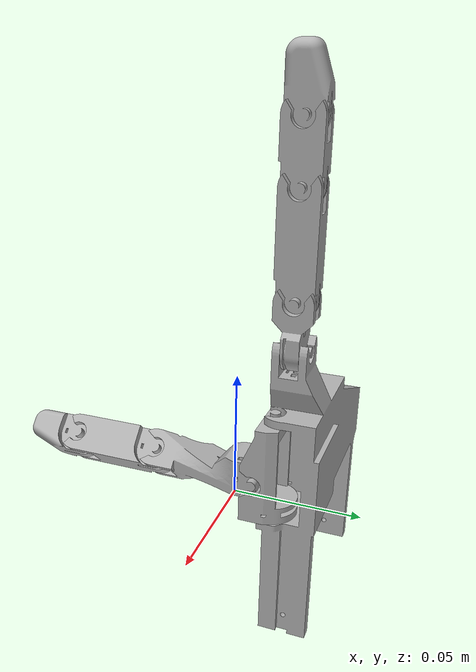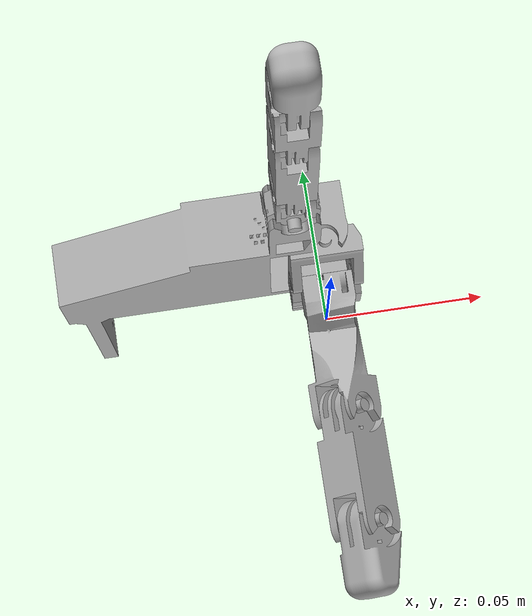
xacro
<?xml version="1.0" ?>
<robot name="Hand" xmlns:xacro="http://www.ros.org/wiki/xacro">

<xacro:include filename="$(find Hand_description)/urdf/materials.xacro" />
<xacro:include filename="$(find Hand_description)/urdf/Hand.trans" />
<xacro:include filename="$(find Hand_description)/urdf/Hand.gazebo" />
<link name="base_link">
  <inertial>
    <origin xyz="-0.03777068462234341 0.02327196685078711 0.006594720592782829" rpy="0 0 0"/>
    <mass value="0.5460361346454996"/>
    <inertia ixx="0.000295" iyy="0.000629" izz="0.000375" ixy="-1.3e-05" iyz="-2e-06" ixz="-4.9e-05"/>
  </inertial>
  <visual>
    <origin xyz="0 0 0" rpy="0 0 0"/>
    <geometry>
      <mesh filename="package://Hand_description/meshes/base_link.stl" scale="0.001 0.001 0.001"/>
    </geometry>
    <material name="silver"/>
  </visual>
  <collision>
    <origin xyz="0 0 0" rpy="0 0 0"/>
    <geometry>
      <mesh filename="package://Hand_description/meshes/base_link.stl" scale="0.001 0.001 0.001"/>
    </geometry>
  </collision>
</link>

<link name="Indexfix_1">
  <inertial>
    <origin xyz="2.2304717936030838e-05 0.006517871144740152 0.006450604350141623" rpy="0 0 0"/>
    <mass value="0.01603110386594604"/>
    <inertia ixx="1e-06" iyy="1e-06" izz="0.0" ixy="0.0" iyz="-0.0" ixz="-0.0"/>
  </inertial>
  <visual>
    <origin xyz="0.008531 -0.012523 -0.059976" rpy="0 0 0"/>
    <geometry>
      <mesh filename="package://Hand_description/meshes/Indexfix_1.stl" scale="0.001 0.001 0.001"/>
    </geometry>
    <material name="silver"/>
  </visual>
  <collision>
    <origin xyz="0.008531 -0.012523 -0.059976" rpy="0 0 0"/>
    <geometry>
      <mesh filename="package://Hand_description/meshes/Indexfix_1.stl" scale="0.001 0.001 0.001"/>
    </geometry>
  </collision>
</link>

<link name="Indexend_1">
  <inertial>
    <origin xyz="0.005500094052565433 0.00011252611470038282 0.01872282860307055" rpy="0 0 0"/>
    <mass value="0.041407323431063965"/>
    <inertia ixx="6e-06" iyy="6e-06" izz="1e-06" ixy="0.0" iyz="0.0" ixz="-0.0"/>
  </inertial>
  <visual>
    <origin xyz="0.014031 -0.019023 -0.078976" rpy="0 0 0"/>
    <geometry>
      <mesh filename="package://Hand_description/meshes/Indexend_1.stl" scale="0.001 0.001 0.001"/>
    </geometry>
    <material name="silver"/>
  </visual>
  <collision>
    <origin xyz="0.014031 -0.019023 -0.078976" rpy="0 0 0"/>
    <geometry>
      <mesh filename="package://Hand_description/meshes/Indexend_1.stl" scale="0.001 0.001 0.001"/>
    </geometry>
  </collision>
</link>

<link name="Indexmiddle_1">
  <inertial>
    <origin xyz="0.00551302966278297 0.00024944179119607 0.009722196457126825" rpy="0 0 0"/>
    <mass value="0.02101649364830199"/>
    <inertia ixx="2e-06" iyy="1e-06" izz="1e-06" ixy="0.0" iyz="0.0" ixz="-0.0"/>
  </inertial>
  <visual>
    <origin xyz="0.014031 -0.019023 -0.118976" rpy="0 0 0"/>
    <geometry>
      <mesh filename="package://Hand_description/meshes/Indexmiddle_1.stl" scale="0.001 0.001 0.001"/>
    </geometry>
    <material name="silver"/>
  </visual>
  <collision>
    <origin xyz="0.014031 -0.019023 -0.118976" rpy="0 0 0"/>
    <geometry>
      <mesh filename="package://Hand_description/meshes/Indexmiddle_1.stl" scale="0.001 0.001 0.001"/>
    </geometry>
  </collision>
</link>

<link name="Indextip_1">
  <inertial>
    <origin xyz="0.005493257746451662 -0.0002846037536686323 0.009522164207143607" rpy="0 0 0"/>
    <mass value="0.022704811734369713"/>
    <inertia ixx="2e-06" iyy="1e-06" izz="0.0" ixy="0.0" iyz="0.0" ixz="0.0"/>
  </inertial>
  <visual>
    <origin xyz="0.014031 -0.019023 -0.141976" rpy="0 0 0"/>
    <geometry>
      <mesh filename="package://Hand_description/meshes/Indextip_1.stl" scale="0.001 0.001 0.001"/>
    </geometry>
    <material name="silver"/>
  </visual>
  <collision>
    <origin xyz="0.014031 -0.019023 -0.141976" rpy="0 0 0"/>
    <geometry>
      <mesh filename="package://Hand_description/meshes/Indextip_1.stl" scale="0.001 0.001 0.001"/>
    </geometry>
  </collision>
</link>

<link name="Thumbroll_1">
  <inertial>
    <origin xyz="9.186167287673669e-05 -0.0013490725238598789 -0.02712996583655558" rpy="0 0 0"/>
    <mass value="0.03694987232707526"/>
    <inertia ixx="8e-06" iyy="9e-06" izz="3e-06" ixy="0.0" iyz="-0.0" ixz="0.0"/>
  </inertial>
  <visual>
    <origin xyz="-0.001 -0.015524 -0.038476" rpy="0 0 0"/>
    <geometry>
      <mesh filename="package://Hand_description/meshes/Thumbroll_1.stl" scale="0.001 0.001 0.001"/>
    </geometry>
    <material name="silver"/>
  </visual>
  <collision>
    <origin xyz="-0.001 -0.015524 -0.038476" rpy="0 0 0"/>
    <geometry>
      <mesh filename="package://Hand_description/meshes/Thumbroll_1.stl" scale="0.001 0.001 0.001"/>
    </geometry>
  </collision>
</link>

<link name="Thumbend_1">
  <inertial>
    <origin xyz="0.011004986490972316 -0.01762966389249578 -0.0006197567673547743" rpy="0 0 0"/>
    <mass value="0.05264211961831972"/>
    <inertia ixx="8e-06" iyy="2e-06" izz="9e-06" ixy="0.0" iyz="-0.0" ixz="-0.0"/>
  </inertial>
  <visual>
    <origin xyz="0.01 -0.010024 -0.011376" rpy="0 0 0"/>
    <geometry>
      <mesh filename="package://Hand_description/meshes/Thumbend_1.stl" scale="0.001 0.001 0.001"/>
    </geometry>
    <material name="silver"/>
  </visual>
  <collision>
    <origin xyz="0.01 -0.010024 -0.011376" rpy="0 0 0"/>
    <geometry>
      <mesh filename="package://Hand_description/meshes/Thumbend_1.stl" scale="0.001 0.001 0.001"/>
    </geometry>
  </collision>
</link>

<link name="Thumbmiddle_1">
  <inertial>
    <origin xyz="0.005419702611819439 -0.014854927488871128 0.005230471286483964" rpy="0 0 0"/>
    <mass value="0.04992622344198199"/>
    <inertia ixx="6e-06" iyy="2e-06" izz="6e-06" ixy="-0.0" iyz="0.0" ixz="0.0"/>
  </inertial>
  <visual>
    <origin xyz="0.004303 0.031976 -0.006073" rpy="0 0 0"/>
    <geometry>
      <mesh filename="package://Hand_description/meshes/Thumbmiddle_1.stl" scale="0.001 0.001 0.001"/>
    </geometry>
    <material name="silver"/>
  </visual>
  <collision>
    <origin xyz="0.004303 0.031976 -0.006073" rpy="0 0 0"/>
    <geometry>
      <mesh filename="package://Hand_description/meshes/Thumbmiddle_1.stl" scale="0.001 0.001 0.001"/>
    </geometry>
  </collision>
</link>

<link name="Thumbtip_1">
  <inertial>
    <origin xyz="0.005111507331948879 -0.008822894678284787 0.005523429376397139" rpy="0 0 0"/>
    <mass value="0.03466320649263508"/>
    <inertia ixx="3e-06" iyy="1e-06" izz="3e-06" ixy="-0.0" iyz="0.0" ixz="0.0"/>
  </inertial>
  <visual>
    <origin xyz="0.004303 0.066976 -0.006073" rpy="0 0 0"/>
    <geometry>
      <mesh filename="package://Hand_description/meshes/Thumbtip_1.stl" scale="0.001 0.001 0.001"/>
    </geometry>
    <material name="silver"/>
  </visual>
  <collision>
    <origin xyz="0.004303 0.066976 -0.006073" rpy="0 0 0"/>
    <geometry>
      <mesh filename="package://Hand_description/meshes/Thumbtip_1.stl" scale="0.001 0.001 0.001"/>
    </geometry>
  </collision>
</link>

<joint name="Revolute 1" type="revolute">
  <origin xyz="-0.008531 0.012523 0.059976" rpy="0 0 0"/>
  <parent link="base_link"/>
  <child link="Indexfix_1"/>
  <axis xyz="-0.0 1.0 0.0"/>
  <limit upper="0.261799" lower="-0.261799" effort="100" velocity="100"/>
</joint>

<joint name="Revolute 2" type="revolute">
  <origin xyz="-0.0055 0.0065 0.019" rpy="0 0 0"/>
  <parent link="Indexfix_1"/>
  <child link="Indexend_1"/>
  <axis xyz="1.0 -0.0 0.0"/>
  <limit upper="1.658063" lower="-0.087266" effort="100" velocity="100"/>
</joint>

<joint name="Revolute 3" type="revolute">
  <origin xyz="0.0 0.0 0.04" rpy="0 0 0"/>
  <parent link="Indexend_1"/>
  <child link="Indexmiddle_1"/>
  <axis xyz="1.0 0.0 0.0"/>
  <limit upper="1.658063" lower="-0.087266" effort="100" velocity="100"/>
</joint>

<joint name="Revolute 4" type="revolute">
  <origin xyz="0.0 0.0 0.023" rpy="0 0 0"/>
  <parent link="Indexmiddle_1"/>
  <child link="Indextip_1"/>
  <axis xyz="1.0 0.0 0.0"/>
  <limit upper="1.658063" lower="-0.087266" effort="100" velocity="100"/>
</joint>

<joint name="Revolute 5" type="revolute">
  <origin xyz="0.001 0.015524 0.038476" rpy="0 0 0"/>
  <parent link="base_link"/>
  <child link="Thumbroll_1"/>
  <axis xyz="-0.0 0.0 -1.0"/>
  <limit upper="0.698132" lower="-1.745329" effort="100" velocity="100"/>
</joint>

<joint name="Revolute 6" type="revolute">
  <origin xyz="-0.011 -0.0055 -0.0271" rpy="0 0 0"/>
  <parent link="Thumbroll_1"/>
  <child link="Thumbend_1"/>
  <axis xyz="1.0 0.0 0.0"/>
  <limit upper="0.226893" lower="-1.396263" effort="100" velocity="100"/>
</joint>

<joint name="Revolute 7" type="revolute">
  <origin xyz="0.005697 -0.042 -0.005303" rpy="0 0 0"/>
  <parent link="Thumbend_1"/>
  <child link="Thumbmiddle_1"/>
  <axis xyz="0.707107 0.0 0.707107"/>
  <limit upper="0.087266" lower="-1.658063" effort="100" velocity="100"/>
</joint>

<joint name="Revolute 8" type="revolute">
  <origin xyz="0.0 -0.035 0.0" rpy="0 0 0"/>
  <parent link="Thumbmiddle_1"/>
  <child link="Thumbtip_1"/>
  <axis xyz="-0.707107 -0.0 -0.707107"/>
  <limit upper="1.658063" lower="-0.087266" effort="100" velocity="100"/>
</joint>

</robot>

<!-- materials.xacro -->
<robot name="Hand" xmlns:xacro="http://www.ros.org/wiki/xacro" >

<material name="silver">
  <color rgba="0.700 0.700 0.700 1.000"/>
</material>

</robot>

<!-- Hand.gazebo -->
<robot name="Hand" xmlns:xacro="http://www.ros.org/wiki/xacro" >

<xacro:property name="body_color" value="Gazebo/Silver" />

<gazebo>
  <plugin name="control" filename="libgazebo_ros_control.so"/>
</gazebo>
<gazebo reference="base_link">
  <material>${body_color}</material>
  <mu1>0.2</mu1>
  <mu2>0.2</mu2>
  <selfCollide>true</selfCollide>
  <gravity>true</gravity>
</gazebo>

<gazebo reference="Indexfix_1">
  <material>${body_color}</material>
  <mu1>0.2</mu1>
  <mu2>0.2</mu2>
  <selfCollide>true</selfCollide>
</gazebo>

<gazebo reference="Indexend_1">
  <material>${body_color}</material>
  <mu1>0.2</mu1>
  <mu2>0.2</mu2>
  <selfCollide>true</selfCollide>
</gazebo>

<gazebo reference="Indexmiddle_1">
  <material>${body_color}</material>
  <mu1>0.2</mu1>
  <mu2>0.2</mu2>
  <selfCollide>true</selfCollide>
</gazebo>

<gazebo reference="Indextip_1">
  <material>${body_color}</material>
  <mu1>0.2</mu1>
  <mu2>0.2</mu2>
  <selfCollide>true</selfCollide>
</gazebo>

<gazebo reference="Thumbroll_1">
  <material>${body_color}</material>
  <mu1>0.2</mu1>
  <mu2>0.2</mu2>
  <selfCollide>true</selfCollide>
</gazebo>

<gazebo reference="Thumbend_1">
  <material>${body_color}</material>
  <mu1>0.2</mu1>
  <mu2>0.2</mu2>
  <selfCollide>true</selfCollide>
</gazebo>

<gazebo reference="Thumbmiddle_1">
  <material>${body_color}</material>
  <mu1>0.2</mu1>
  <mu2>0.2</mu2>
  <selfCollide>true</selfCollide>
</gazebo>

<gazebo reference="Thumbtip_1">
  <material>${body_color}</material>
  <mu1>0.2</mu1>
  <mu2>0.2</mu2>
  <selfCollide>true</selfCollide>
</gazebo>

</robot>
